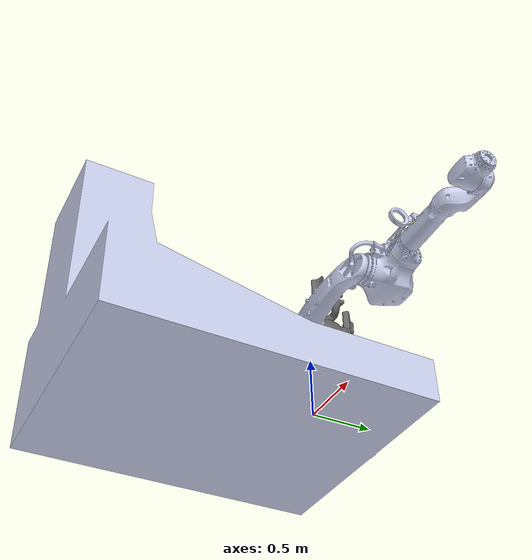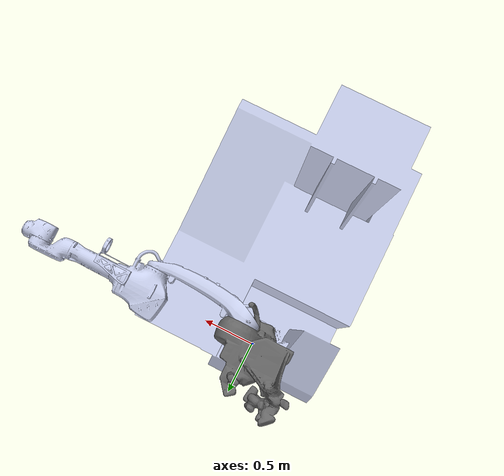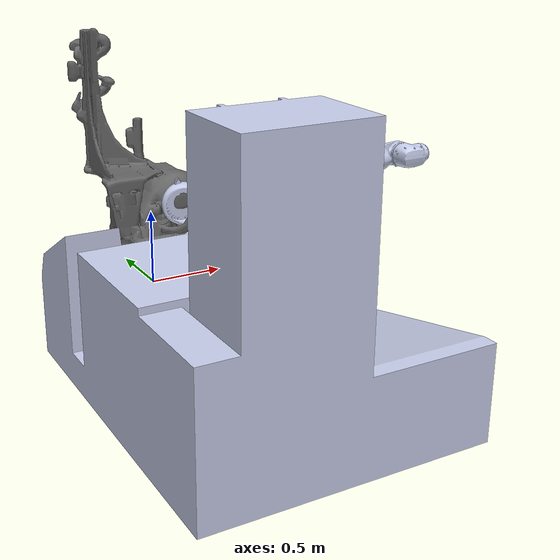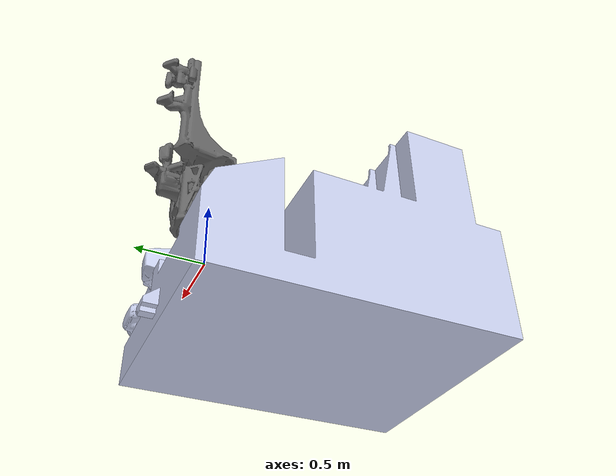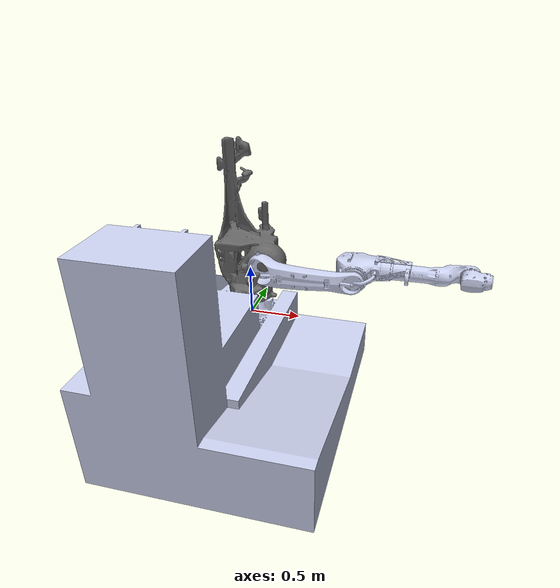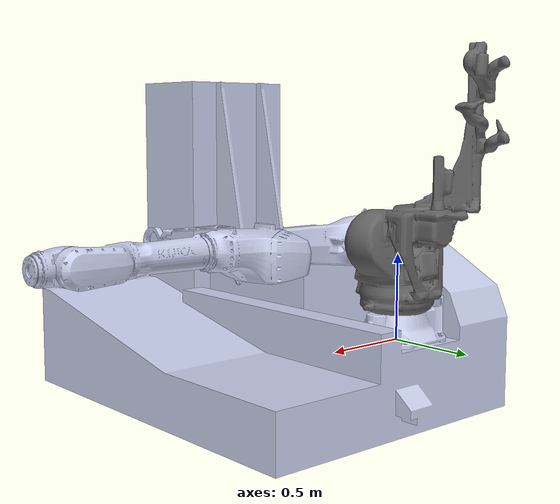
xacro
<?xml version="1.0"?>
<robot name="kr_70_r2100" xmlns:xacro="http://www.ros.org/wiki/xacro">
  <xacro:arg name="use_fake_hardware" default="true"/>

  <xacro:include filename="$(find kuka_moveit2_spike)/urdf/kr_70_r2100.ros2_control.xacro"/>

  <xacro:property name="mesh_dir" value="package://kuka_moveit2_spike/meshes"/>

  <!-- ==================== Links ==================== -->

  <link name="world"/>

  <joint name="world_to_base" type="fixed">
    <origin xyz="0 0 0" rpy="0 0 0"/>
    <parent link="world"/>
    <child link="base_link"/>
  </joint>

  <link name="base_link">
    <inertial>
      <origin xyz="0.18214323685253 -0.030374158086361 0.956536163087158" rpy="0 0 0"/>
      <mass value="559"/>
      <inertia ixx="300.413165720827" ixy="0.226872889869252" ixz="-85.3930667863479"
               iyy="351.250186540615" iyz="5.16499915063217" izz="73.3918569278715"/>
    </inertial>
    <visual>
      <origin xyz="0 0 0.175" rpy="0 0 0.7853982"/>
      <geometry><mesh filename="${mesh_dir}/base_link_D.STL"/></geometry>
      <material name="kuka_silver"><color rgba="0.792 0.820 0.933 1"/></material>
    </visual>
    <collision>
      <origin xyz="0 0 0.175" rpy="0 0 0.7853982"/>
      <geometry><mesh filename="${mesh_dir}/base_link_D.STL"/></geometry>
    </collision>
  </link>

  <link name="link_A1">
    <inertial>
      <origin xyz="0.18214323685253 -0.030374158086361 0.956536163087158" rpy="0 0 0.7853982"/>
      <mass value="559"/>
      <inertia ixx="300.413165720827" ixy="0.226872889869252" ixz="-85.3930667863479"
               iyy="351.250186540615" iyz="5.16499915063217" izz="73.3918569278715"/>
    </inertial>
    <visual>
      <origin xyz="0 0 0" rpy="0 0 0"/>
      <geometry><mesh filename="${mesh_dir}/link_A1.STL"/></geometry>
      <material name="kuka_dark"><color rgba="0.4 0.4 0.4 1"/></material>
    </visual>
    <collision>
      <origin xyz="0 0 0" rpy="0 0 0"/>
      <geometry><mesh filename="${mesh_dir}/link_A1.STL"/></geometry>
    </collision>
  </link>

  <link name="link_A2">
    <inertial>
      <origin xyz="0.18214323685253 -0.030374158086361 0.956536163087158" rpy="0 0 0"/>
      <mass value="559"/>
      <inertia ixx="300.413165720827" ixy="0.226872889869252" ixz="-85.3930667863479"
               iyy="351.250186540615" iyz="5.16499915063217" izz="73.3918569278715"/>
    </inertial>
    <visual>
      <origin xyz="-0.17 0.08 -0.58" rpy="0 0 0"/>
      <geometry><mesh filename="${mesh_dir}/link_A2.STL"/></geometry>
      <material name="kuka_silver"/>
    </visual>
    <collision>
      <origin xyz="-0.17 0.08 -0.58" rpy="0 0 0"/>
      <geometry><mesh filename="${mesh_dir}/link_A2.STL"/></geometry>
    </collision>
  </link>

  <link name="link_A3">
    <inertial>
      <origin xyz="0.18214323685253 -0.030374158086361 0.956536163087158" rpy="0 0 0"/>
      <mass value="559"/>
      <inertia ixx="300.413165720827" ixy="0.226872889869252" ixz="-85.3930667863479"
               iyy="351.250186540615" iyz="5.16499915063217" izz="73.3918569278715"/>
    </inertial>
    <visual>
      <origin xyz="0 0 0" rpy="0 0 0"/>
      <geometry><mesh filename="${mesh_dir}/link_A3.STL"/></geometry>
      <material name="kuka_silver"/>
    </visual>
    <collision>
      <origin xyz="0 0 0" rpy="0 0 0"/>
      <geometry><mesh filename="${mesh_dir}/link_A3.STL"/></geometry>
    </collision>
  </link>

  <link name="cable_guide_mount">
    <visual>
      <origin xyz="0 0 0" rpy="0 0 0"/>
      <geometry><mesh filename="${mesh_dir}/cable_guide_mount.STL"/></geometry>
      <material name="kuka_silver"/>
    </visual>
    <collision>
      <origin xyz="0 0 0" rpy="0 0 0"/>
      <geometry><mesh filename="${mesh_dir}/cable_guide_mount.STL"/></geometry>
    </collision>
  </link>

  <link name="link_A4">
    <inertial>
      <origin xyz="0.18214323685253 -0.030374158086361 0.956536163087158" rpy="0 0 0"/>
      <mass value="559"/>
      <inertia ixx="300.413165720827" ixy="0.226872889869252" ixz="-85.3930667863479"
               iyy="351.250186540615" iyz="5.16499915063217" izz="73.3918569278715"/>
    </inertial>
    <visual>
      <origin xyz="0 0 0" rpy="0 0 0"/>
      <geometry><mesh filename="${mesh_dir}/link_A4.STL"/></geometry>
      <material name="kuka_silver"/>
    </visual>
    <collision>
      <origin xyz="0 0 0" rpy="0 0 0"/>
      <geometry><mesh filename="${mesh_dir}/link_A4.STL"/></geometry>
    </collision>
  </link>

  <link name="link_A5">
    <inertial>
      <origin xyz="0.18214323685253 -0.030374158086361 0.956536163087158" rpy="0 0 0"/>
      <mass value="559"/>
      <inertia ixx="300.413165720827" ixy="0.226872889869252" ixz="-85.3930667863479"
               iyy="351.250186540615" iyz="5.16499915063217" izz="73.3918569278715"/>
    </inertial>
    <visual>
      <origin xyz="0 0 0" rpy="0 0 0"/>
      <geometry><mesh filename="${mesh_dir}/link_A5.STL"/></geometry>
      <material name="kuka_silver"/>
    </visual>
    <collision>
      <origin xyz="0 0 0" rpy="0 0 0"/>
      <geometry><mesh filename="${mesh_dir}/link_A5.STL"/></geometry>
    </collision>
  </link>

  <link name="link_A6">
    <inertial>
      <origin xyz="0.18214323685253 -0.030374158086361 0.956536163087158" rpy="0 0 0"/>
      <mass value="559"/>
      <inertia ixx="300.413165720827" ixy="0.226872889869252" ixz="-85.3930667863479"
               iyy="351.250186540615" iyz="5.16499915063217" izz="73.3918569278715"/>
    </inertial>
    <visual>
      <origin xyz="0 0 0" rpy="0 0 0"/>
      <geometry><mesh filename="${mesh_dir}/link_A6.STL"/></geometry>
      <material name="kuka_silver"/>
    </visual>
    <collision>
      <origin xyz="0 0 0" rpy="0 0 0"/>
      <geometry><mesh filename="${mesh_dir}/link_A6.STL"/></geometry>
    </collision>
  </link>

  <!-- ==================== Joints ==================== -->

  <joint name="joint_a1" type="revolute">
    <origin xyz="0 0 0.175" rpy="0 0 0"/>
    <parent link="base_link"/>
    <child link="link_A1"/>
    <axis xyz="0 0 -1"/>
    <limit lower="-3.2289" upper="3.2289" effort="0" velocity="3.0543"/>
  </joint>

  <joint name="joint_a2" type="revolute">
    <origin xyz="0.175 -0.078063 0.405" rpy="0.0013336 1.5708 0"/>
    <parent link="link_A1"/>
    <child link="link_A2"/>
    <axis xyz="0 1 0.0013336"/>
    <limit lower="-3.0543" upper="1.0472" effort="0" velocity="2.7576"/>
  </joint>

  <joint name="joint_a3" type="revolute">
    <origin xyz="0 -0.00172032615170126 0.88999885289791" rpy="1.57079634169155 -1.5694627402354 -1.57079632679441"/>
    <parent link="link_A2"/>
    <child link="link_A3"/>
    <axis xyz="0 1 0"/>
    <limit lower="-2.0944" upper="2.9671" effort="0" velocity="3.0543"/>
  </joint>

  <joint name="link_A3_to_cable_guide_mount" type="fixed">
    <origin xyz="0 0 0" rpy="0 0 0"/>
    <parent link="link_A3"/>
    <child link="cable_guide_mount"/>
  </joint>

  <joint name="joint_a4" type="revolute">
    <origin xyz="0.3268 0.078063 0.05" rpy="0 0 0"/>
    <parent link="link_A3"/>
    <child link="link_A4"/>
    <axis xyz="-1 0 0"/>
    <limit lower="-3.1416" upper="3.1416" effort="0" velocity="2"/>
  </joint>

  <joint name="joint_a5" type="revolute">
    <origin xyz="0.7082 0 0" rpy="0 0 0"/>
    <parent link="link_A4"/>
    <child link="link_A5"/>
    <axis xyz="0 1 0"/>
    <limit lower="-2.1817" upper="2.1817" effort="0" velocity="4.3633"/>
  </joint>

  <joint name="joint_a6" type="revolute">
    <origin xyz="0.145 0 0" rpy="-0.523599 0 0"/>
    <parent link="link_A5"/>
    <child link="link_A6"/>
    <axis xyz="-1 0 0"/>
    <limit lower="-6.1087" upper="6.1087" effort="0" velocity="6.2832"/>
  </joint>

  <!-- ==================== ros2_control ==================== -->

  <xacro:kr70_ros2_control use_fake_hardware="$(arg use_fake_hardware)"/>

</robot>
